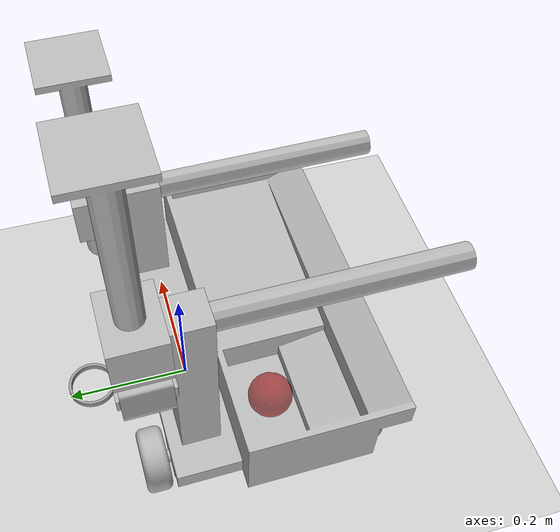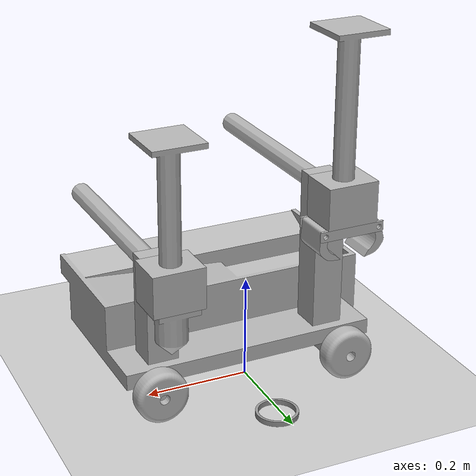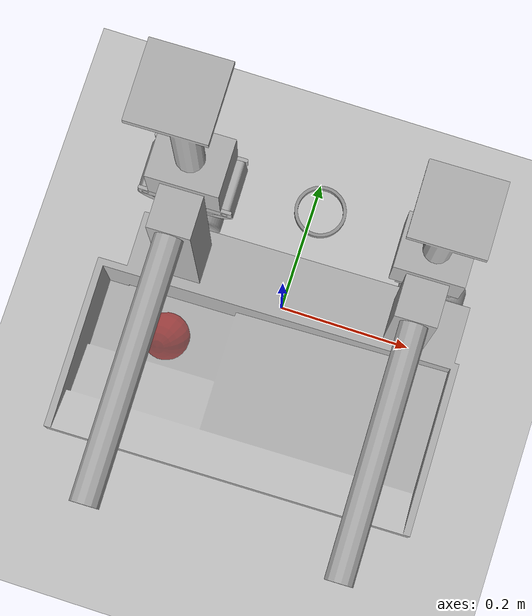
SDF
<sdf version="1.6">
 <world name="default">
  <light name="sun" type="directional">
   <pose>0 0 10 0 -0 0</pose>
   <diffuse>0.8 0.8 0.8 1</diffuse>
   <specular>0.2 0.2 0.2 1</specular>
   <attenuation>
    <range>1000</range>
    <constant>0.9</constant>
    <linear>0.01</linear>
    <quadratic>0.001</quadratic>
   </attenuation>
   <direction>-0.5 0.1 -0.9</direction>
  </light>
  <model name="ground_plane">
   <static>1</static>
   <link name="link">
    <collision name="collision">
     <geometry><plane><normal>0 0 1</normal><size>100 100</size></plane></geometry>
     <surface>
      <contact><collide_bitmask>65535</collide_bitmask></contact>
      <friction><ode><mu>100</mu><mu2>50</mu2></ode></friction>
     </surface>
    </collision>
    <visual name="visual">
     <cast_shadows>0</cast_shadows>
     <geometry><plane><normal>0 0 1</normal><size>100 100</size></plane></geometry>
     <material>
      <script><uri>file://media/materials/scripts/gazebo.material</uri><name>Gazebo/Grey</name></script>
     </material>
    </visual>
   </link>
  </model>
  <gravity>0 0 -9.8</gravity>
  <magnetic_field>6e-06 2.3e-05 -4.2e-05</magnetic_field>
  <atmosphere type="adiabatic"/>
  <physics name="default_physics" default="0" type="ode">
   <max_step_size>0.001</max_step_size>
   <real_time_factor>1</real_time_factor>
   <real_time_update_rate>1000</real_time_update_rate>
  </physics>
  <scene><ambient>0.4 0.4 0.4 1</ambient><background>0.7 0.7 0.7 1</background><shadows>1</shadows></scene>
  <spherical_coordinates>
   <surface_model>EARTH_WGS84</surface_model>
   <latitude_deg>0</latitude_deg>
   <longitude_deg>0</longitude_deg>
   <elevation>0</elevation>
   <heading_deg>0</heading_deg>
  </spherical_coordinates>
  <model name="Assem1">
   <link name="base_link">
    <inertial>
     <mass>20</mass>
     <inertia><ixx>1</ixx><ixy>0</ixy><ixz>0</ixz><iyy>1</iyy><iyz>0</iyz><izz>1</izz></inertia>
    </inertial>
    <collision name="base_link_collision">
     <geometry>
      <mesh><scale>1 1 1</scale><uri>/home/hstee/tutorial/src/robot_urdf/mesh/base_link.STL</uri></mesh>
     </geometry>
    </collision>
    <visual name="base_link_visual">
     <geometry>
      <mesh><scale>1 1 1</scale><uri>/home/hstee/tutorial/src/robot_urdf/mesh/base_link.STL</uri></mesh>
     </geometry>
    </visual>
   </link>
   <link name="digging_link_1">
    <pose>0.17 0 0 0 -0 0</pose>
    <inertial>
     <mass>0.63832</mass>
     <inertia><ixx>1</ixx><ixy>0</ixy><ixz>0</ixz><iyy>1</iyy><iyz>0</iyz><izz>1</izz></inertia>
    </inertial>
    <collision name="digging_link_1_collision">
     <geometry>
      <mesh><scale>1 1 1</scale><uri>/home/hstee/tutorial/src/robot_urdf/mesh/digging_link_1.STL</uri></mesh>
     </geometry>
    </collision>
    <visual name="digging_link_1_visual">
     <geometry>
      <mesh><scale>1 1 1</scale><uri>/home/hstee/tutorial/src/robot_urdf/mesh/digging_link_1.STL</uri></mesh>
     </geometry>
    </visual>
   </link>
   <joint name="base_to_digging_link_1" type="revolute">
    <child>digging_link_1</child>
    <parent>base_link</parent>
    <axis>
     <xyz>0 0 1</xyz>
     <limit><lower>-3.1416</lower><upper>3.1416</upper><effort>0.2</effort><velocity>0.5</velocity></limit>
     <dynamics><spring_reference>0</spring_reference><spring_stiffness>0</spring_stiffness></dynamics>
     <use_parent_model_frame>1</use_parent_model_frame>
    </axis>
   </joint>
   <link name="digging_link_2">
    <pose>0.17 0 0.175 0 -0 0</pose>
    <inertial>
     <mass>1.0673</mass>
     <inertia><ixx>1</ixx><ixy>0</ixy><ixz>0</ixz><iyy>1</iyy><iyz>0</iyz><izz>1</izz></inertia>
    </inertial>
    <collision name="digging_link_2_collision">
     <geometry>
      <mesh><scale>1 1 1</scale><uri>/home/hstee/tutorial/src/robot_urdf/mesh/digging_link_2.STL</uri></mesh>
     </geometry>
    </collision>
    <visual name="digging_link_2_visual">
     <pose>0 0.06998 0 0 -0 0</pose>
     <geometry>
      <mesh><scale>1 1 1</scale><uri>/home/hstee/tutorial/src/robot_urdf/mesh/digging_link_2.STL</uri></mesh>
     </geometry>
    </visual>
   </link>
   <joint name="digging_link_1_to_2" type="prismatic">
    <child>digging_link_2</child>
    <parent>digging_link_1</parent>
    <axis>
     <xyz>0 1 0</xyz>
     <limit><lower>0</lower><upper>0.28</upper><effort>0.2</effort><velocity>0.5</velocity></limit>
     <dynamics><spring_reference>0</spring_reference><spring_stiffness>0</spring_stiffness></dynamics>
     <use_parent_model_frame>1</use_parent_model_frame>
    </axis>
   </joint>
   <link name="digging_link_3">
    <pose>0.17 0.07 0.175 -3.14159 -0 0</pose>
    <inertial>
     <mass>0.001</mass>
     <inertia><ixx>0</ixx><ixy>0</ixy><ixz>0</ixz><iyy>0</iyy><iyz>0</iyz><izz>0</izz></inertia>
    </inertial>
    <collision name="digging_link_3_collision">
     <geometry>
      <mesh><scale>1 1 1</scale><uri>/home/hstee/tutorial/src/robot_urdf/mesh/digging_link_3.STL</uri></mesh>
     </geometry>
    </collision>
    <visual name="digging_link_3_visual">
     <pose>0 0 0.04 0 -0 0</pose>
     <geometry>
      <mesh><scale>1 1 1</scale><uri>/home/hstee/tutorial/src/robot_urdf/mesh/digging_link_3.STL</uri></mesh>
     </geometry>
    </visual>
   </link>
   <joint name="digging_link_2_to_3" type="prismatic">
    <child>digging_link_3</child>
    <parent>digging_link_2</parent>
    <axis>
     <xyz>0 7e-06 -1</xyz>
     <limit><lower>0</lower><upper>0.22</upper><effort>0.2</effort><velocity>0.5</velocity></limit>
     <dynamics><spring_reference>0</spring_reference><spring_stiffness>0</spring_stiffness></dynamics>
     <use_parent_model_frame>1</use_parent_model_frame>
    </axis>
   </joint>
   <link name="seeding_link_1">
    <pose>-0.17 0 0 0 -0 0</pose>
    <inertial>
     <mass>0.99832</mass>
     <inertia><ixx>1</ixx><ixy>0</ixy><ixz>0</ixz><iyy>1</iyy><iyz>0</iyz><izz>1</izz></inertia>
    </inertial>
    <collision name="seeding_link_1_collision">
     <geometry>
      <mesh><scale>1 1 1</scale><uri>/home/hstee/tutorial/src/robot_urdf/mesh/seeding_link_1.STL</uri></mesh>
     </geometry>
    </collision>
    <visual name="seeding_link_1_visual">
     <geometry>
      <mesh><scale>1 1 1</scale><uri>/home/hstee/tutorial/src/robot_urdf/mesh/seeding_link_1.STL</uri></mesh>
     </geometry>
    </visual>
   </link>
   <joint name="base_to_seeding_link_1" type="revolute">
    <child>seeding_link_1</child>
    <parent>base_link</parent>
    <axis>
     <xyz>0 0 1</xyz>
     <limit><lower>-3.1416</lower><upper>3.1416</upper><effort>0.2</effort><velocity>0.5</velocity></limit>
     <dynamics><spring_reference>0</spring_reference><spring_stiffness>0</spring_stiffness></dynamics>
     <use_parent_model_frame>1</use_parent_model_frame>
    </axis>
   </joint>
   <link name="seeding_link_2">
    <pose>-0.17 0 0.275 0 -0 0</pose>
    <inertial>
     <mass>1.0673</mass>
     <inertia><ixx>1</ixx><ixy>0</ixy><ixz>0</ixz><iyy>1</iyy><iyz>0</iyz><izz>1</izz></inertia>
    </inertial>
    <collision name="seeding_link_2_collision">
     <geometry>
      <mesh><scale>1 1 1</scale><uri>/home/hstee/tutorial/src/robot_urdf/mesh/seeding_link_2.STL</uri></mesh>
     </geometry>
    </collision>
    <visual name="seeding_link_2_visual">
     <pose>0 0.07 0 0 -0 0</pose>
     <geometry>
      <mesh><scale>1 1 1</scale><uri>/home/hstee/tutorial/src/robot_urdf/mesh/seeding_link_2.STL</uri></mesh>
     </geometry>
    </visual>
   </link>
   <joint name="seeding_link_1_to_2" type="prismatic">
    <child>seeding_link_2</child>
    <parent>seeding_link_1</parent>
    <axis>
     <xyz>0 1 0</xyz>
     <limit><lower>0</lower><upper>0.3</upper><effort>0.2</effort><velocity>0.5</velocity></limit>
     <dynamics><spring_reference>0</spring_reference><spring_stiffness>0</spring_stiffness></dynamics>
     <use_parent_model_frame>1</use_parent_model_frame>
    </axis>
   </joint>
   <link name="seeding_link_3">
    <pose>-0.17 0.07 0.275 -3.14159 -0 0</pose>
    <inertial>
     <mass>0.001</mass>
     <inertia><ixx>0</ixx><ixy>0</ixy><ixz>0</ixz><iyy>0</iyy><iyz>0</iyz><izz>0</izz></inertia>
    </inertial>
    <collision name="seeding_link_3_collision">
     <geometry>
      <mesh><scale>1 1 1</scale><uri>/home/hstee/tutorial/src/robot_urdf/mesh/seeding_link_3.STL</uri></mesh>
     </geometry>
    </collision>
    <visual name="seeding_link_3_visual">
     <pose>0 0 0.04 0 -0 0</pose>
     <geometry>
      <mesh><scale>1 1 1</scale><uri>/home/hstee/tutorial/src/robot_urdf/mesh/seeding_link_3.STL</uri></mesh>
     </geometry>
    </visual>
   </link>
   <joint name="seeding_link_2_to_3" type="prismatic">
    <child>seeding_link_3</child>
    <parent>seeding_link_2</parent>
    <axis>
     <xyz>0 7e-06 -1</xyz>
     <limit><lower>0</lower><upper>0.22</upper><effort>0.2</effort><velocity>0.5</velocity></limit>
     <dynamics><spring_reference>0</spring_reference><spring_stiffness>0</spring_stiffness></dynamics>
     <use_parent_model_frame>1</use_parent_model_frame>
    </axis>
   </joint>
   <link name="clamp1">
    <pose>-0.225 0.07 0.225 -3.14159 0.25224 2e-06</pose>
    <inertial>
     <mass>0.001</mass>
     <inertia><ixx>1</ixx><ixy>0</ixy><ixz>0</ixz><iyy>1</iyy><iyz>0</iyz><izz>1</izz></inertia>
    </inertial>
    <collision name="clamp1_collision">
     <geometry>
      <mesh><scale>1 1 1</scale><uri>/home/hstee/tutorial/src/robot_urdf/mesh/clamp1.STL</uri></mesh>
     </geometry>
    </collision>
    <visual name="clamp1_visual">
     <geometry>
      <mesh><scale>1 1 1</scale><uri>/home/hstee/tutorial/src/robot_urdf/mesh/clamp1.STL</uri></mesh>
     </geometry>
    </visual>
   </link>
   <joint name="seeding_link_to_clamp1" type="revolute">
    <child>clamp1</child>
    <parent>seeding_link_3</parent>
    <axis>
     <xyz>-0 -1 -7e-06</xyz>
     <limit><lower>-1.1516</lower><upper>1.1516</upper><effort>0</effort><velocity>0.5</velocity></limit>
     <dynamics><spring_reference>0</spring_reference><spring_stiffness>0</spring_stiffness></dynamics>
     <use_parent_model_frame>1</use_parent_model_frame>
    </axis>
   </joint>
   <link name="clamp2">
    <pose>-0.115 0.07 0.225 -3.14159 -0.084482 -1e-06</pose>
    <inertial>
     <mass>0.001</mass>
     <inertia><ixx>1</ixx><ixy>0</ixy><ixz>0</ixz><iyy>1</iyy><iyz>0</iyz><izz>1</izz></inertia>
    </inertial>
    <collision name="clamp2_collision">
     <geometry>
      <mesh><scale>1 1 1</scale><uri>/home/hstee/tutorial/src/robot_urdf/mesh/clamp2.STL</uri></mesh>
     </geometry>
    </collision>
    <visual name="clamp2_visual">
     <geometry>
      <mesh><scale>1 1 1</scale><uri>/home/hstee/tutorial/src/robot_urdf/mesh/clamp2.STL</uri></mesh>
     </geometry>
    </visual>
   </link>
   <joint name="seeding_link_to_clamp2" type="revolute">
    <child>clamp2</child>
    <parent>seeding_link_3</parent>
    <axis>
     <xyz>0 1 7e-06</xyz>
     <limit><lower>-1.1516</lower><upper>1.1516</upper><effort>0</effort><velocity>0.5</velocity></limit>
     <dynamics><spring_reference>0</spring_reference><spring_stiffness>0</spring_stiffness></dynamics>
     <use_parent_model_frame>1</use_parent_model_frame>
    </axis>
   </joint>
   <link name="tyre1">
    <pose>0.19123 0.04506 -0.045 1.5708 -0 3.14159</pose>
    <inertial>
     <mass>0.28871</mass>
     <inertia><ixx>1</ixx><ixy>0</ixy><ixz>0</ixz><iyy>1</iyy><iyz>0</iyz><izz>1</izz></inertia>
    </inertial>
    <collision name="tyre1_collision">
     <geometry>
      <mesh><scale>1 1 1</scale><uri>/home/hstee/tutorial/src/robot_urdf/mesh/tyre1.STL</uri></mesh>
     </geometry>
    </collision>
    <visual name="tyre1_visual">
     <geometry>
      <mesh><scale>1 1 1</scale><uri>/home/hstee/tutorial/src/robot_urdf/mesh/tyre1.STL</uri></mesh>
     </geometry>
    </visual>
   </link>
   <joint name="base_to_tyre1" type="revolute">
    <child>tyre1</child>
    <parent>base_link</parent>
    <axis>
     <xyz>-7e-06 -1 4e-06</xyz>
     <limit><lower>-1e+16</lower><upper>1e+16</upper></limit>
     <dynamics><spring_reference>0</spring_reference><spring_stiffness>0</spring_stiffness></dynamics>
     <use_parent_model_frame>1</use_parent_model_frame>
    </axis>
   </joint>
   <link name="tyre2">
    <pose>-0.1884 0.05491 -0.045 1.5708 -0 3.14159</pose>
    <inertial>
     <mass>0.28871</mass>
     <inertia><ixx>1</ixx><ixy>0</ixy><ixz>0</ixz><iyy>1</iyy><iyz>0</iyz><izz>1</izz></inertia>
    </inertial>
    <collision name="tyre2_collision">
     <geometry>
      <mesh><scale>1 1 1</scale><uri>/home/hstee/tutorial/src/robot_urdf/mesh/tyre2.STL</uri></mesh>
     </geometry>
    </collision>
    <visual name="tyre2_visual">
     <geometry>
      <mesh><scale>1 1 1</scale><uri>/home/hstee/tutorial/src/robot_urdf/mesh/tyre2.STL</uri></mesh>
     </geometry>
    </visual>
   </link>
   <joint name="base_to_tyre2" type="revolute">
    <child>tyre2</child>
    <parent>base_link</parent>
    <axis>
     <xyz>7e-06 1 -4e-06</xyz>
     <limit><lower>-1e+16</lower><upper>1e+16</upper></limit>
     <dynamics><spring_reference>0</spring_reference><spring_stiffness>0</spring_stiffness></dynamics>
     <use_parent_model_frame>1</use_parent_model_frame>
    </axis>
   </joint>
   <link name="tyre3">
    <pose>-0.19642 -0.24499 -0.045 1.5708 -0 0</pose>
    <inertial>
     <mass>0.28871</mass>
     <inertia><ixx>1</ixx><ixy>0</ixy><ixz>0</ixz><iyy>1</iyy><iyz>0</iyz><izz>1</izz></inertia>
    </inertial>
    <collision name="tyre3_collision">
     <geometry>
      <mesh><scale>1 1 1</scale><uri>/home/hstee/tutorial/src/robot_urdf/mesh/tyre3.STL</uri></mesh>
     </geometry>
    </collision>
    <visual name="tyre3_visual">
     <geometry>
      <mesh><scale>1 1 1</scale><uri>/home/hstee/tutorial/src/robot_urdf/mesh/tyre3.STL</uri></mesh>
     </geometry>
    </visual>
   </link>
   <joint name="base_to_tyre3" type="revolute">
    <child>tyre3</child>
    <parent>base_link</parent>
    <axis>
     <xyz>0 -1 -4e-06</xyz>
     <limit><lower>-1e+16</lower><upper>1e+16</upper></limit>
     <dynamics><spring_reference>0</spring_reference><spring_stiffness>0</spring_stiffness></dynamics>
     <use_parent_model_frame>1</use_parent_model_frame>
    </axis>
   </joint>
   <link name="tyre4">
    <pose>0.18346 -0.24499 -0.045 1.5708 -0 0</pose>
    <inertial>
     <mass>0.28871</mass>
     <inertia><ixx>1</ixx><ixy>0</ixy><ixz>0</ixz><iyy>1</iyy><iyz>0</iyz><izz>1</izz></inertia>
    </inertial>
    <collision name="tyre4_collision">
     <geometry>
      <mesh><scale>1 1 1</scale><uri>/home/hstee/tutorial/src/robot_urdf/mesh/tyre4.STL</uri></mesh>
     </geometry>
    </collision>
    <visual name="tyre4_visual">
     <geometry>
      <mesh><scale>1 1 1</scale><uri>/home/hstee/tutorial/src/robot_urdf/mesh/tyre4.STL</uri></mesh>
     </geometry>
    </visual>
   </link>
   <joint name="base_to_tyre4" type="revolute">
    <child>tyre4</child>
    <parent>base_link</parent>
    <axis>
     <xyz>0 1 4e-06</xyz>
     <limit><lower>-1e+16</lower><upper>1e+16</upper></limit>
     <dynamics><spring_reference>0</spring_reference><spring_stiffness>0</spring_stiffness></dynamics>
     <use_parent_model_frame>1</use_parent_model_frame>
    </axis>
   </joint>
   <static>0</static>
   <plugin name="gazebo_ros_control" filename="libgazebo_ros_control.so">
    <robotNamespace>/</robotNamespace>
   </plugin>
   <pose>0.017958 0.014649 0.094978 -1.3e-05 7.8e-05 0.016748</pose>
  </model>
  <model name="hole">
   <link name="link_0">
    <inertial>
     <mass>1</mass>
     <inertia>
      <ixx>0.166667</ixx>
      <ixy>0</ixy>
      <ixz>0</ixz>
      <iyy>0.166667</iyy>
      <iyz>0</iyz>
      <izz>0.166667</izz>
     </inertia>
    </inertial>
    <pose>-0 3e-06 0 0 -0 0</pose>
    <visual name="visual">
     <geometry>
      <mesh><uri>/home/hstee/tutorial/src/robot_urdf/mesh/hole.STL</uri><scale>1 1 1</scale></mesh>
     </geometry>
     <material>
      <lighting>1</lighting>
      <script><uri>file://media/materials/scripts/gazebo.material</uri><name>Gazebo/Grey</name></script>
      <shader type="pixel"/>
     </material>
    </visual>
    <collision name="collision">
     <geometry>
      <mesh><uri>/home/hstee/tutorial/src/robot_urdf/mesh/hole.STL</uri><scale>1 1 1</scale></mesh>
     </geometry>
     <surface>
      <friction>
       <ode><mu>1</mu><mu2>1</mu2><fdir1>0 0 0</fdir1><slip1>0</slip1><slip2>0</slip2></ode>
       <torsional>
        <coefficient>1</coefficient>
        <patch_radius>0</patch_radius>
        <surface_radius>0</surface_radius>
        <use_patch_radius>1</use_patch_radius>
        <ode><slip>0</slip></ode>
       </torsional>
      </friction>
      <bounce><restitution_coefficient>0</restitution_coefficient><threshold>1e+06</threshold></bounce>
      <contact>
       <collide_without_contact>0</collide_without_contact>
       <collide_without_contact_bitmask>1</collide_without_contact_bitmask>
       <collide_bitmask>1</collide_bitmask>
       <ode>
        <soft_cfm>0</soft_cfm>
        <soft_erp>0.2</soft_erp>
        <kp>1e+13</kp>
        <kd>1</kd>
        <max_vel>0.01</max_vel>
        <min_depth>0</min_depth>
       </ode>
       <bullet>
        <split_impulse>1</split_impulse>
        <split_impulse_penetration_threshold>-0.01</split_impulse_penetration_threshold>
        <soft_cfm>0</soft_cfm>
        <soft_erp>0.2</soft_erp>
        <kp>1e+13</kp>
        <kd>1</kd>
       </bullet>
      </contact>
     </surface>
    </collision>
   </link>
   <static>0</static>
   <pose>0.0115 0.16 -2e-06 1.57081 -1e-05 0</pose>
  </model>
  <model name="potato">
   <link name="link_0">
    <inertial>
     <mass>0.0005</mass>
     <inertia><ixx>1</ixx><ixy>0</ixy><ixz>0</ixz><iyy>1</iyy><iyz>0</iyz><izz>1</izz></inertia>
    </inertial>
    <visual name="visual">
     <geometry><sphere><radius>0.0348697</radius></sphere></geometry>
     <material>
      <lighting>1</lighting>
      <script><uri>file://media/materials/scripts/gazebo.material</uri><name>Gazebo/Grey</name></script>
      <shader type="pixel"><normal_map>__default__</normal_map></shader>
      <ambient>0.6 0 0 0.6</ambient>
      <diffuse>0.7 0.7 0.7 1</diffuse>
      <specular>0.01 0.01 0.01 1</specular>
      <emissive>0 0 0 1</emissive>
     </material>
    </visual>
    <collision name="collision">
     <geometry><sphere><radius>0.03487</radius></sphere></geometry>
     <surface>
      <friction>
       <ode><mu>1</mu><mu2>1</mu2><fdir1>0 0 0</fdir1><slip1>0</slip1><slip2>0</slip2></ode>
       <torsional>
        <coefficient>1</coefficient>
        <patch_radius>0</patch_radius>
        <surface_radius>0</surface_radius>
        <use_patch_radius>1</use_patch_radius>
        <ode><slip>0</slip></ode>
       </torsional>
      </friction>
      <bounce><restitution_coefficient>0</restitution_coefficient><threshold>1e+06</threshold></bounce>
      <contact>
       <collide_without_contact>0</collide_without_contact>
       <collide_without_contact_bitmask>1</collide_without_contact_bitmask>
       <collide_bitmask>1</collide_bitmask>
       <ode>
        <soft_cfm>0</soft_cfm>
        <soft_erp>0.2</soft_erp>
        <kp>1e+13</kp>
        <kd>1</kd>
        <max_vel>0.01</max_vel>
        <min_depth>0</min_depth>
       </ode>
       <bullet>
        <split_impulse>1</split_impulse>
        <split_impulse_penetration_threshold>-0.01</split_impulse_penetration_threshold>
        <soft_cfm>0</soft_cfm>
        <soft_erp>0.2</soft_erp>
        <kp>1e+13</kp>
        <kd>1</kd>
       </bullet>
      </contact>
     </surface>
    </collision>
   </link>
   <static>0</static>
   <pose>-0.142221 -0.108713 0.109861 -2.58105 -0.520496 0.460102</pose>
  </model>
 </world>
</sdf>
